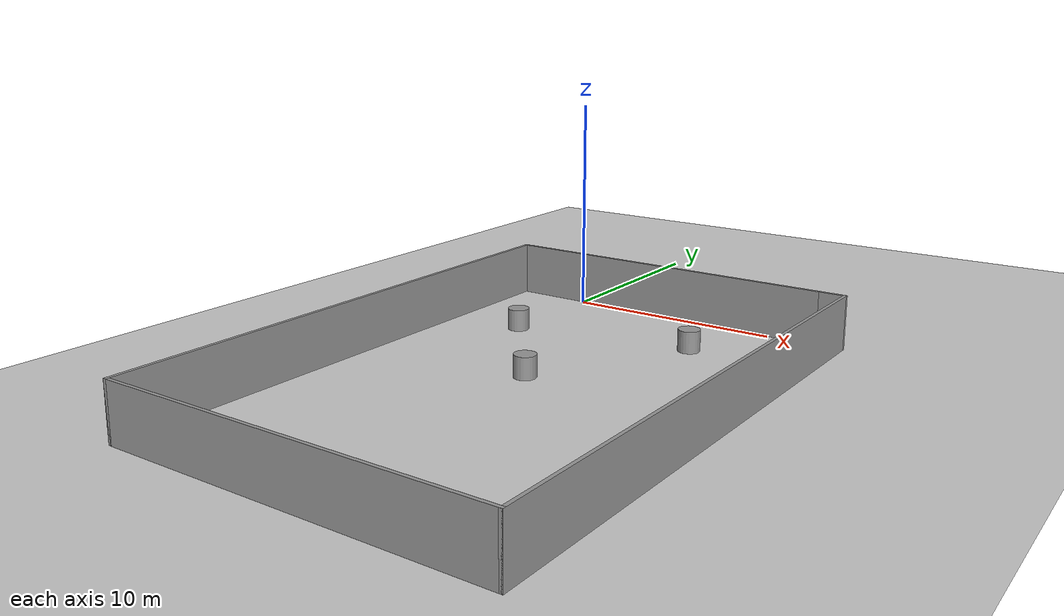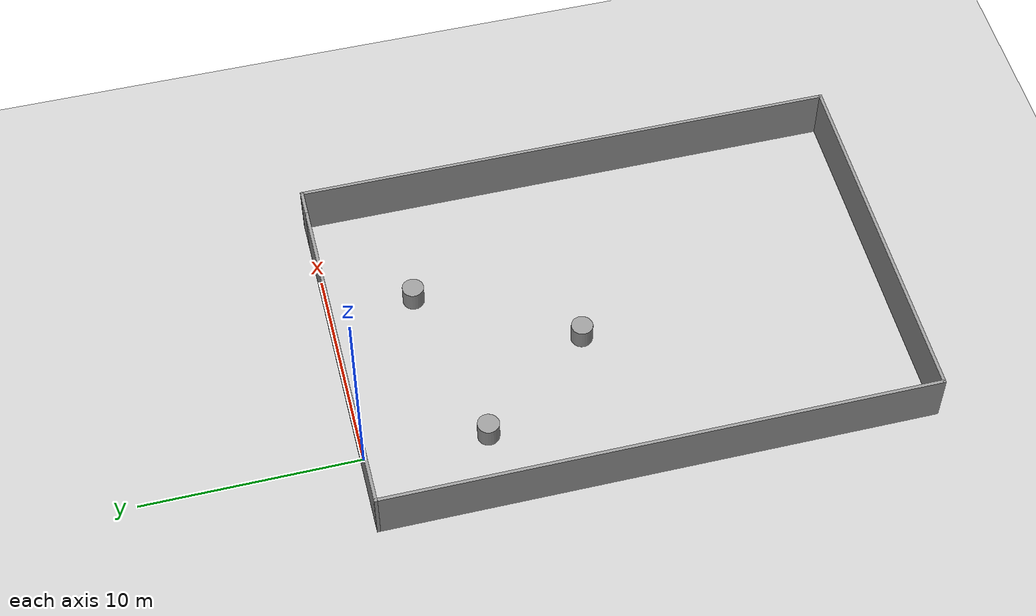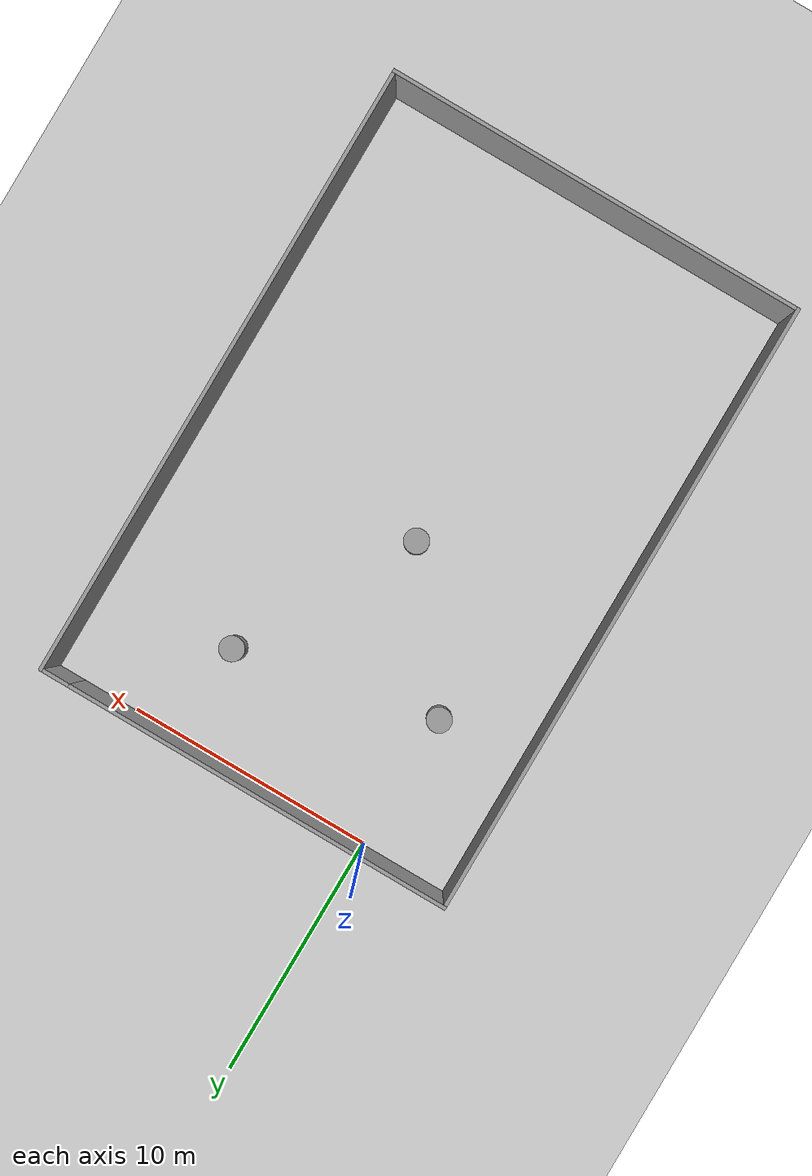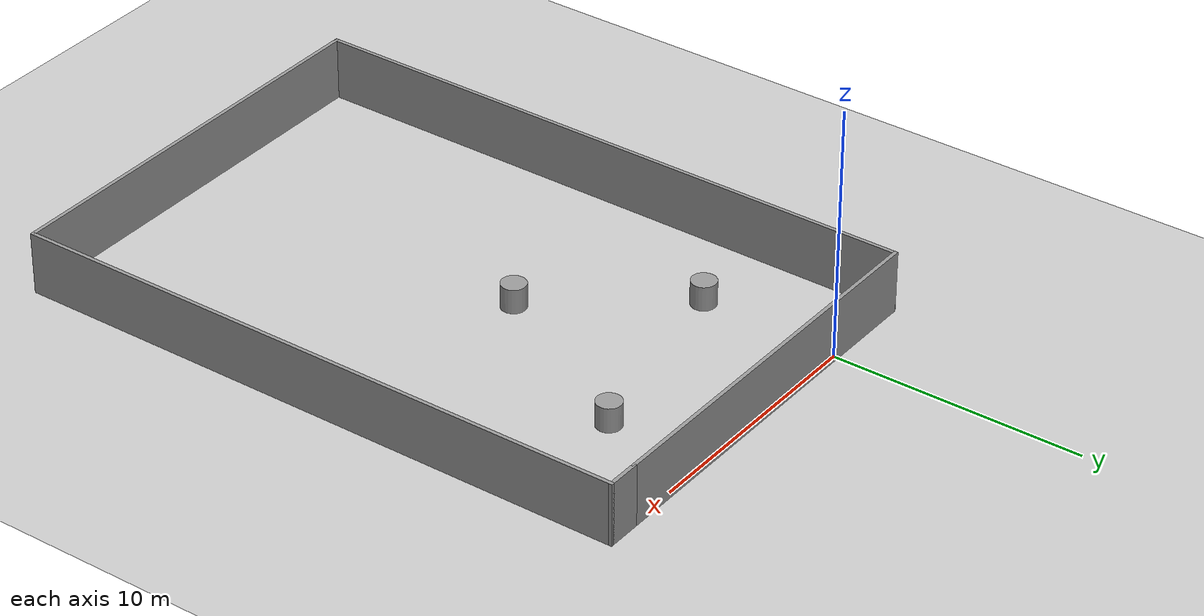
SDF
<sdf version="1.6">
 <world name="default">
  <light name="sun" type="directional">
   <pose>0 0 10 0 -0 0</pose>
   <diffuse>0.8 0.8 0.8 1</diffuse>
   <specular>0.2 0.2 0.2 1</specular>
   <attenuation>
    <range>1000</range>
    <constant>0.9</constant>
    <linear>0.01</linear>
    <quadratic>0.001</quadratic>
   </attenuation>
   <direction>-0.5 0.1 -0.9</direction>
  </light>
  <model name="ground_plane">
   <static>1</static>
   <link name="link">
    <collision name="collision">
     <geometry><plane><normal>0 0 1</normal><size>100 100</size></plane></geometry>
     <surface>
      <contact><collide_bitmask>65535</collide_bitmask></contact>
      <friction><ode><mu>100</mu><mu2>50</mu2></ode></friction>
     </surface>
    </collision>
    <visual name="visual">
     <cast_shadows>0</cast_shadows>
     <geometry><plane><normal>0 0 1</normal><size>100 100</size></plane></geometry>
     <material>
      <script><uri>file://media/materials/scripts/gazebo.material</uri><name>Gazebo/Grey</name></script>
     </material>
    </visual>
   </link>
  </model>
  <gravity>0 0 -9.8</gravity>
  <magnetic_field>6e-06 2.3e-05 -4.2e-05</magnetic_field>
  <atmosphere type="adiabatic"/>
  <physics name="default_physics" default="0" type="ode">
   <max_step_size>0.001</max_step_size>
   <real_time_factor>1</real_time_factor>
   <real_time_update_rate>1000</real_time_update_rate>
  </physics>
  <scene><ambient>0.4 0.4 0.4 1</ambient><background>0.7 0.7 0.7 1</background><shadows>1</shadows></scene>
  <audio><device>default</device></audio>
  <spherical_coordinates>
   <surface_model>EARTH_WGS84</surface_model>
   <latitude_deg>0</latitude_deg>
   <longitude_deg>0</longitude_deg>
   <elevation>0</elevation>
   <heading_deg>0</heading_deg>
  </spherical_coordinates>
  <model name="wall_0">
   <pose>4.92371 -12.5752 0 0 -0 0</pose>
   <link name="Wall_12">
    <collision name="Wall_12_Collision">
     <geometry><box><size>16 0.15 2.5</size></box></geometry>
     <pose>0 0 1.25 0 -0 0</pose>
    </collision>
    <visual name="Wall_12_Visual">
     <pose>0 0 1.25 0 -0 0</pose>
     <geometry><box><size>16 0.15 2.5</size></box></geometry>
     <material>
      <script><uri>file://media/materials/scripts/gazebo.material</uri><name>Gazebo/Grey</name></script>
      <ambient>1 1 1 1</ambient>
     </material>
     <meta><layer>0</layer></meta>
    </visual>
    <pose>-0.625 12.675 0 0 -0 0</pose>
   </link>
   <link name="Wall_15">
    <collision name="Wall_15_Collision">
     <geometry><box><size>25.5 0.15 2.5</size></box></geometry>
     <pose>0 0 1.25 0 -0 0</pose>
    </collision>
    <visual name="Wall_15_Visual">
     <pose>0 0 1.25 0 -0 0</pose>
     <geometry><box><size>25.5 0.15 2.5</size></box></geometry>
     <material>
      <script><uri>file://media/materials/scripts/gazebo.material</uri><name>Gazebo/Grey</name></script>
      <ambient>1 1 1 1</ambient>
     </material>
     <meta><layer>0</layer></meta>
    </visual>
    <pose>-8.55 -0 0 0 -0 -1.5708</pose>
   </link>
   <link name="Wall_16">
    <collision name="Wall_16_Collision">
     <geometry><box><size>17.25 0.15 2.5</size></box></geometry>
     <pose>0 0 1.25 0 -0 0</pose>
    </collision>
    <visual name="Wall_16_Visual">
     <pose>0 0 1.25 0 -0 0</pose>
     <geometry><box><size>17.25 0.15 2.5</size></box></geometry>
     <material>
      <script><uri>file://media/materials/scripts/gazebo.material</uri><name>Gazebo/Grey</name></script>
      <ambient>1 1 1 1</ambient>
     </material>
     <meta><layer>0</layer></meta>
    </visual>
    <pose>-0 -12.675 0 0 -0 0</pose>
   </link>
   <link name="Wall_17">
    <collision name="Wall_17_Collision">
     <geometry><box><size>25.5 0.15 2.5</size></box></geometry>
     <pose>0 0 1.25 0 -0 0</pose>
    </collision>
    <visual name="Wall_17_Visual">
     <pose>0 0 1.25 0 -0 0</pose>
     <geometry><box><size>25.5 0.15 2.5</size></box></geometry>
     <material>
      <script><uri>file://media/materials/scripts/gazebo.material</uri><name>Gazebo/Grey</name></script>
      <ambient>1 1 1 1</ambient>
     </material>
     <meta><layer>0</layer></meta>
    </visual>
    <pose>8.55 -0 0 0 -0 1.5708</pose>
   </link>
   <link name="Wall_18">
    <collision name="Wall_18_Collision">
     <geometry><box><size>1.4 0.15 2.5</size></box></geometry>
     <pose>0 0 1.25 0 -0 0</pose>
    </collision>
    <visual name="Wall_18_Visual">
     <pose>0 0 1.25 0 -0 0</pose>
     <geometry><box><size>1.4 0.15 2.5</size></box></geometry>
     <material>
      <script><uri>file://media/materials/scripts/gazebo.material</uri><name>Gazebo/Grey</name></script>
      <ambient>1 1 1 1</ambient>
     </material>
     <meta><layer>0</layer></meta>
    </visual>
    <pose>7.925 12.675 0 0 -0 3.14159</pose>
   </link>
   <static>1</static>
  </model>
  <model name="unit_cylinder">
   <pose>-0.062117 -5.60398 0.499997 3e-06 4e-06 -0</pose>
   <link name="link">
    <inertial>
     <mass>1</mass>
     <inertia><ixx>0.145833</ixx><ixy>0</ixy><ixz>0</ixz><iyy>0.145833</iyy><iyz>0</iyz><izz>0.125</izz></inertia>
    </inertial>
    <collision name="collision">
     <geometry><cylinder><radius>0.5</radius><length>1</length></cylinder></geometry>
    </collision>
    <visual name="visual">
     <geometry><cylinder><radius>0.5</radius><length>1</length></cylinder></geometry>
     <material>
      <script><name>Gazebo/Grey</name><uri>file://media/materials/scripts/gazebo.material</uri></script>
     </material>
    </visual>
   </link>
  </model>
  <model name="unit_cylinder_0">
   <pose>8.00342 -3.94528 0.499993 -3e-06 -4e-06 -0</pose>
   <link name="link">
    <inertial>
     <mass>1</mass>
     <inertia><ixx>0.145833</ixx><ixy>0</ixy><ixz>0</ixz><iyy>0.145833</iyy><iyz>0</iyz><izz>0.125</izz></inertia>
    </inertial>
    <collision name="collision">
     <geometry><cylinder><radius>0.5</radius><length>1</length></cylinder></geometry>
    </collision>
    <visual name="visual">
     <geometry><cylinder><radius>0.5</radius><length>1</length></cylinder></geometry>
     <material>
      <script><name>Gazebo/Grey</name><uri>file://media/materials/scripts/gazebo.material</uri></script>
     </material>
    </visual>
   </link>
  </model>
  <model name="unit_cylinder_1">
   <pose>4.09274 -10.9553 0.499997 3e-06 4e-06 -0</pose>
   <link name="link">
    <inertial>
     <mass>1</mass>
     <inertia><ixx>0.145833</ixx><ixy>0</ixy><ixz>0</ixz><iyy>0.145833</iyy><iyz>0</iyz><izz>0.125</izz></inertia>
    </inertial>
    <collision name="collision">
     <geometry><cylinder><radius>0.5</radius><length>1</length></cylinder></geometry>
    </collision>
    <visual name="visual">
     <geometry><cylinder><radius>0.5</radius><length>1</length></cylinder></geometry>
     <material>
      <script><name>Gazebo/Grey</name><uri>file://media/materials/scripts/gazebo.material</uri></script>
     </material>
    </visual>
   </link>
  </model>
 </world>
</sdf>
